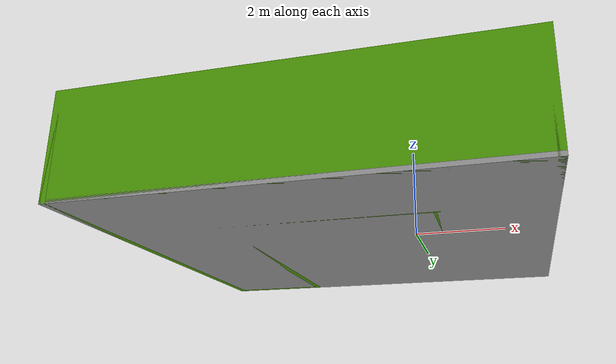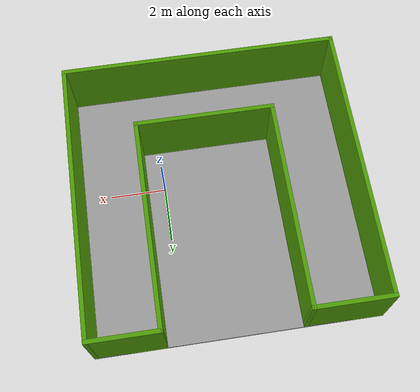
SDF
<?xml version='1.0'?>
<sdf version='1.6'>
  <model name='mybuilding'>
    <pose frame=''>-1.89026 0.841126 0 0 -0 0</pose>
    <link name='Floor_1'>
      <collision name='Floor_1_Collision'>
        <geometry>
          <box>
            <size>10 10 0.1</size>
          </box>
        </geometry>
        <pose frame=''>0 0 0.05 0 -0 0</pose>
      </collision>
      <visual name='Floor_1_Visual'>
        <pose frame=''>0 0 0.05 0 -0 0</pose>
        <geometry>
          <box>
            <size>10 10 0.1</size>
          </box>
        </geometry>
        <material>
          <script>
            <uri>file://media/materials/scripts/gazebo.material</uri>
            <name>Gazebo/Grey</name>
          </script>
          <ambient>1 1 1 1</ambient>
        </material>
        <meta>
          <layer>0</layer>
        </meta>
      </visual>
      <pose frame=''>0 0 0 0 -0 0</pose>
    </link>
    <link name='Wall_17'>
      <collision name='Wall_17_Collision'>
        <geometry>
          <box>
            <size>10 0.15 2.5</size>
          </box>
        </geometry>
        <pose frame=''>0 0 1.25 0 -0 0</pose>
      </collision>
      <visual name='Wall_17_Visual'>
        <pose frame=''>0 0 1.25 0 -0 0</pose>
        <geometry>
          <box>
            <size>10 0.15 2.5</size>
          </box>
        </geometry>
        <material>
          <script>
            <uri>file://media/materials/scripts/gazebo.material</uri>
            <name>Gazebo/Grey</name>
          </script>
          <ambient>0.305882 0.603922 0.0235294 1</ambient>
        </material>
        <meta>
          <layer>0</layer>
        </meta>
      </visual>
      <pose frame=''>-4.925 0 0 0 -0 -1.5708</pose>
    </link>
    <link name='Wall_18'>
      <collision name='Wall_18_Collision'>
        <geometry>
          <box>
            <size>10 0.15 2.5</size>
          </box>
        </geometry>
        <pose frame=''>0 0 1.25 0 -0 0</pose>
      </collision>
      <visual name='Wall_18_Visual'>
        <pose frame=''>0 0 1.25 0 -0 0</pose>
        <geometry>
          <box>
            <size>10 0.15 2.5</size>
          </box>
        </geometry>
        <material>
          <script>
            <uri>file://media/materials/scripts/gazebo.material</uri>
            <name>Gazebo/Grey</name>
          </script>
          <ambient>0.305882 0.603922 0.0235294 1</ambient>
        </material>
        <meta>
          <layer>0</layer>
        </meta>
      </visual>
      <pose frame=''>0 -4.925 0 0 -0 0</pose>
    </link>
    <link name='Wall_19'>
      <collision name='Wall_19_Collision'>
        <geometry>
          <box>
            <size>10 0.15 2.5</size>
          </box>
        </geometry>
        <pose frame=''>0 0 1.25 0 -0 0</pose>
      </collision>
      <visual name='Wall_19_Visual'>
        <pose frame=''>0 0 1.25 0 -0 0</pose>
        <geometry>
          <box>
            <size>10 0.15 2.5</size>
          </box>
        </geometry>
        <material>
          <script>
            <uri>file://media/materials/scripts/gazebo.material</uri>
            <name>Gazebo/Grey</name>
          </script>
          <ambient>0.305882 0.603922 0.0235294 1</ambient>
        </material>
        <meta>
          <layer>0</layer>
        </meta>
      </visual>
      <pose frame=''>4.925 0 0 0 -0 1.5708</pose>
    </link>
    <link name='Wall_20'>
      <collision name='Wall_20_Collision'>
        <geometry>
          <box>
            <size>2.5 0.15 2.5</size>
          </box>
        </geometry>
        <pose frame=''>0 0 1.25 0 -0 0</pose>
      </collision>
      <visual name='Wall_20_Visual'>
        <pose frame=''>0 0 1.25 0 -0 0</pose>
        <geometry>
          <box>
            <size>2.5 0.15 2.5</size>
          </box>
        </geometry>
        <material>
          <script>
            <uri>file://media/materials/scripts/gazebo.material</uri>
            <name>Gazebo/Grey</name>
          </script>
          <ambient>0.305882 0.603922 0.0235294 1</ambient>
        </material>
        <meta>
          <layer>0</layer>
        </meta>
      </visual>
      <pose frame=''>3.75 4.925 0 0 -0 3.14159</pose>
    </link>
    <link name='Wall_21'>
      <collision name='Wall_21_Collision'>
        <geometry>
          <box>
            <size>7.5 0.15 2.5</size>
          </box>
        </geometry>
        <pose frame=''>0 0 1.25 0 -0 0</pose>
      </collision>
      <visual name='Wall_21_Visual'>
        <pose frame=''>0 0 1.25 0 -0 0</pose>
        <geometry>
          <box>
            <size>7.5 0.15 2.5</size>
          </box>
        </geometry>
        <material>
          <script>
            <uri>file://media/materials/scripts/gazebo.material</uri>
            <name>Gazebo/Grey</name>
          </script>
          <ambient>0.305882 0.603922 0.0235294 1</ambient>
        </material>
        <meta>
          <layer>0</layer>
        </meta>
      </visual>
      <pose frame=''>2.575 1.25 0 0 -0 -1.5708</pose>
    </link>
    <link name='Wall_22'>
      <collision name='Wall_22_Collision'>
        <geometry>
          <box>
            <size>5 0.15 2.5</size>
          </box>
        </geometry>
        <pose frame=''>0 0 1.25 0 -0 0</pose>
      </collision>
      <visual name='Wall_22_Visual'>
        <pose frame=''>0 0 1.25 0 -0 0</pose>
        <geometry>
          <box>
            <size>5 0.15 2.5</size>
          </box>
        </geometry>
        <material>
          <script>
            <uri>file://media/materials/scripts/gazebo.material</uri>
            <name>Gazebo/Grey</name>
          </script>
          <ambient>0.305882 0.603922 0.0235294 1</ambient>
        </material>
        <meta>
          <layer>0</layer>
        </meta>
      </visual>
      <pose frame=''>0.15 -2.425 0 0 -0 3.14159</pose>
    </link>
    <link name='Wall_23'>
      <collision name='Wall_23_Collision'>
        <geometry>
          <box>
            <size>7.5 0.15 2.5</size>
          </box>
        </geometry>
        <pose frame=''>0 0 1.25 0 -0 0</pose>
      </collision>
      <visual name='Wall_23_Visual'>
        <pose frame=''>0 0 1.25 0 -0 0</pose>
        <geometry>
          <box>
            <size>7.5 0.15 2.5</size>
          </box>
        </geometry>
        <material>
          <script>
            <uri>file://media/materials/scripts/gazebo.material</uri>
            <name>Gazebo/Grey</name>
          </script>
          <ambient>0.305882 0.603922 0.0235294 1</ambient>
        </material>
        <meta>
          <layer>0</layer>
        </meta>
      </visual>
      <pose frame=''>-2.275 1.25 0 0 -0 1.5708</pose>
    </link>
    <link name='Wall_24'>
      <collision name='Wall_24_Collision'>
        <geometry>
          <box>
            <size>2.8 0.15 2.5</size>
          </box>
        </geometry>
        <pose frame=''>0 0 1.25 0 -0 0</pose>
      </collision>
      <visual name='Wall_24_Visual'>
        <pose frame=''>0 0 1.25 0 -0 0</pose>
        <geometry>
          <box>
            <size>2.8 0.15 2.5</size>
          </box>
        </geometry>
        <material>
          <script>
            <uri>file://media/materials/scripts/gazebo.material</uri>
            <name>Gazebo/Grey</name>
          </script>
          <ambient>0.305882 0.603922 0.0235294 1</ambient>
        </material>
        <meta>
          <layer>0</layer>
        </meta>
      </visual>
      <pose frame=''>-3.6 4.925 0 0 -0 3.14159</pose>
    </link>
    <static>1</static>
  </model>
</sdf>
